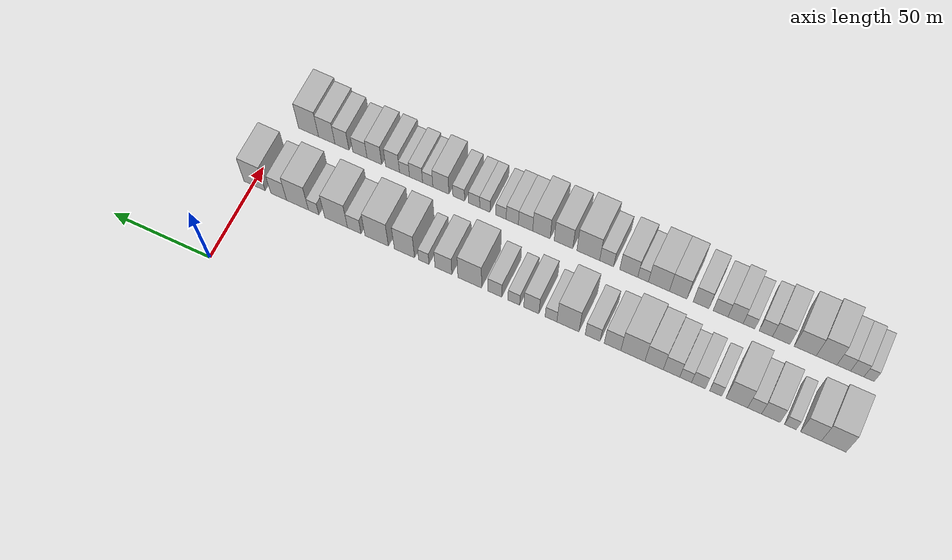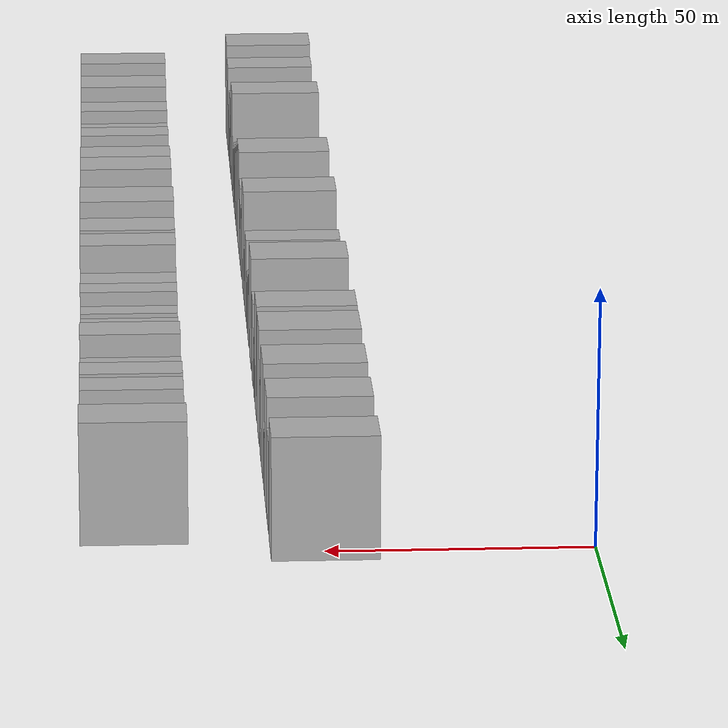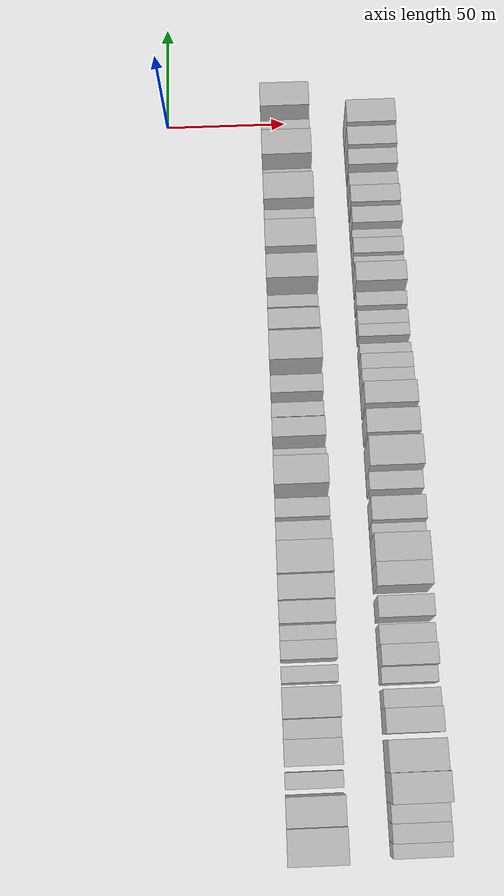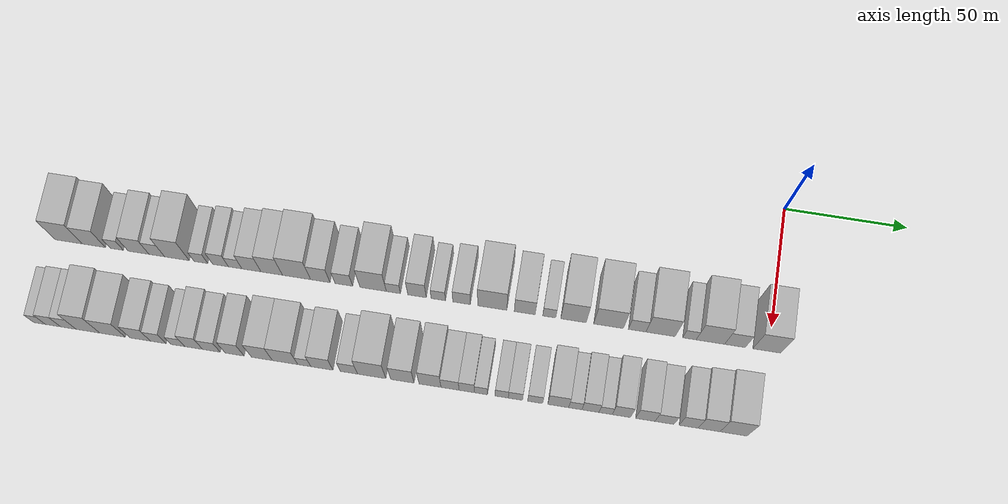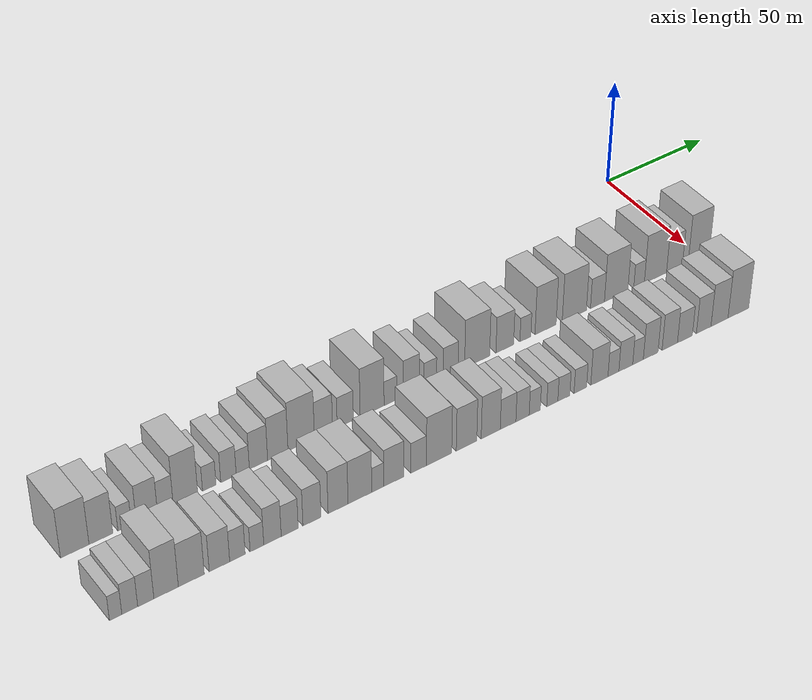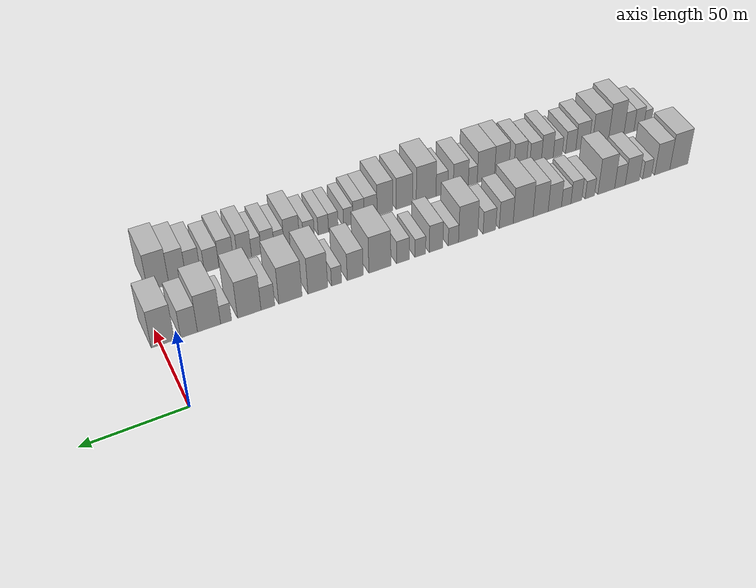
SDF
<sdf version="1.6">
 <world name="default">
  <model name="building_1">
   <static>1</static>
   <pose>50.0000 -284.3537 0 0.000000 0.000000 0.000000</pose>
   <link name="link">
    <pose>0 0 12.00 0 0 0</pose>
    <collision name="collision"><geometry><box><size>20.0000 11.2926 24.0000</size></box></geometry></collision>
    <visual name="visual">
     <cast_shadows>0</cast_shadows>
     <geometry><box><size>20.0000 11.2926 24.0000</size></box></geometry>
     <material>
      <script>
       <uri>model://HANNAS_wall/materials/scripts</uri>
       <uri>model://HANNAS_wall/materials/textures</uri>
       <name>vrc/HANNAS_wall</name>
      </script>
     </material>
    </visual>
   </link>
  </model>
  <model name="building_2">
   <static>1</static>
   <pose>50.0000 -273.9467 0 0.000000 0.000000 0.000000</pose>
   <link name="link">
    <pose>0 0 10.50 0 0 0</pose>
    <collision name="collision"><geometry><box><size>20.0000 9.5215 21.0000</size></box></geometry></collision>
    <visual name="visual">
     <cast_shadows>0</cast_shadows>
     <geometry><box><size>20.0000 9.5215 21.0000</size></box></geometry>
     <material>
      <script>
       <uri>model://HANNAS_wall/materials/scripts</uri>
       <uri>model://HANNAS_wall/materials/textures</uri>
       <name>vrc/HANNAS_wall</name>
      </script>
     </material>
    </visual>
   </link>
  </model>
  <model name="building_3">
   <static>1</static>
   <pose>50.0000 -264.4770 0 0.000000 0.000000 0.000000</pose>
   <link name="link">
    <pose>0 0 6.00 0 0 0</pose>
    <collision name="collision"><geometry><box><size>20.0000 5.4179 12.0000</size></box></geometry></collision>
    <visual name="visual">
     <cast_shadows>0</cast_shadows>
     <geometry><box><size>20.0000 5.4179 12.0000</size></box></geometry>
     <material>
      <script>
       <uri>model://HANNAS_wall/materials/scripts</uri>
       <uri>model://HANNAS_wall/materials/textures</uri>
       <name>vrc/HANNAS_wall</name>
      </script>
     </material>
    </visual>
   </link>
  </model>
  <model name="building_4">
   <static>1</static>
   <pose>50.0000 -255.4573 0 0.000000 0.000000 0.000000</pose>
   <link name="link">
    <pose>0 0 9.00 0 0 0</pose>
    <collision name="collision"><geometry><box><size>20.0000 8.6215 18.0000</size></box></geometry></collision>
    <visual name="visual">
     <cast_shadows>0</cast_shadows>
     <geometry><box><size>20.0000 8.6215 18.0000</size></box></geometry>
     <material>
      <script>
       <uri>model://HANNAS_wall/materials/scripts</uri>
       <uri>model://HANNAS_wall/materials/textures</uri>
       <name>vrc/HANNAS_wall</name>
      </script>
     </material>
    </visual>
   </link>
  </model>
  <model name="building_5">
   <static>1</static>
   <pose>50.0000 -247.9118 0 0.000000 0.000000 0.000000</pose>
   <link name="link">
    <pose>0 0 7.50 0 0 0</pose>
    <collision name="collision"><geometry><box><size>20.0000 6.4694 15.0000</size></box></geometry></collision>
    <visual name="visual">
     <cast_shadows>0</cast_shadows>
     <geometry><box><size>20.0000 6.4694 15.0000</size></box></geometry>
     <material>
      <script>
       <uri>model://HANNAS_wall/materials/scripts</uri>
       <uri>model://HANNAS_wall/materials/textures</uri>
       <name>vrc/HANNAS_wall</name>
      </script>
     </material>
    </visual>
   </link>
  </model>
  <model name="building_6">
   <static>1</static>
   <pose>50.0000 -239.6142 0 0.000000 0.000000 0.000000</pose>
   <link name="link">
    <pose>0 0 12.00 0 0 0</pose>
    <collision name="collision"><geometry><box><size>20.0000 10.1259 24.0000</size></box></geometry></collision>
    <visual name="visual">
     <cast_shadows>0</cast_shadows>
     <geometry><box><size>20.0000 10.1259 24.0000</size></box></geometry>
     <material>
      <script>
       <uri>model://HANNAS_wall/materials/scripts</uri>
       <uri>model://HANNAS_wall/materials/textures</uri>
       <name>vrc/HANNAS_wall</name>
      </script>
     </material>
    </visual>
   </link>
  </model>
  <model name="building_7">
   <static>1</static>
   <pose>50.0000 -229.7362 0 0.000000 0.000000 0.000000</pose>
   <link name="link">
    <pose>0 0 6.00 0 0 0</pose>
    <collision name="collision"><geometry><box><size>20.0000 5.6300 12.0000</size></box></geometry></collision>
    <visual name="visual">
     <cast_shadows>0</cast_shadows>
     <geometry><box><size>20.0000 5.6300 12.0000</size></box></geometry>
     <material>
      <script>
       <uri>model://HANNAS_wall/materials/scripts</uri>
       <uri>model://HANNAS_wall/materials/textures</uri>
       <name>vrc/HANNAS_wall</name>
      </script>
     </material>
    </visual>
   </link>
  </model>
  <model name="building_8">
   <static>1</static>
   <pose>50.0000 -221.6639 0 0.000000 0.000000 0.000000</pose>
   <link name="link">
    <pose>0 0 7.50 0 0 0</pose>
    <collision name="collision"><geometry><box><size>20.0000 6.5146 15.0000</size></box></geometry></collision>
    <visual name="visual">
     <cast_shadows>0</cast_shadows>
     <geometry><box><size>20.0000 6.5146 15.0000</size></box></geometry>
     <material>
      <script>
       <uri>model://HANNAS_wall/materials/scripts</uri>
       <uri>model://HANNAS_wall/materials/textures</uri>
       <name>vrc/HANNAS_wall</name>
      </script>
     </material>
    </visual>
   </link>
  </model>
  <model name="building_9">
   <static>1</static>
   <pose>50.0000 -215.6207 0 0.000000 0.000000 0.000000</pose>
   <link name="link">
    <pose>0 0 6.00 0 0 0</pose>
    <collision name="collision"><geometry><box><size>20.0000 5.5718 12.0000</size></box></geometry></collision>
    <visual name="visual">
     <cast_shadows>0</cast_shadows>
     <geometry><box><size>20.0000 5.5718 12.0000</size></box></geometry>
     <material>
      <script>
       <uri>model://HANNAS_wall/materials/scripts</uri>
       <uri>model://HANNAS_wall/materials/textures</uri>
       <name>vrc/HANNAS_wall</name>
      </script>
     </material>
    </visual>
   </link>
  </model>
  <model name="building_10">
   <static>1</static>
   <pose>50.0000 -208.9223 0 0.000000 0.000000 0.000000</pose>
   <link name="link">
    <pose>0 0 9.00 0 0 0</pose>
    <collision name="collision"><geometry><box><size>20.0000 7.8251 18.0000</size></box></geometry></collision>
    <visual name="visual">
     <cast_shadows>0</cast_shadows>
     <geometry><box><size>20.0000 7.8251 18.0000</size></box></geometry>
     <material>
      <script>
       <uri>model://HANNAS_wall/materials/scripts</uri>
       <uri>model://HANNAS_wall/materials/textures</uri>
       <name>vrc/HANNAS_wall</name>
      </script>
     </material>
    </visual>
   </link>
  </model>
  <model name="building_11">
   <static>1</static>
   <pose>50.0000 -200.6276 0 0.000000 0.000000 0.000000</pose>
   <link name="link">
    <pose>0 0 10.50 0 0 0</pose>
    <collision name="collision"><geometry><box><size>20.0000 8.7643 21.0000</size></box></geometry></collision>
    <visual name="visual">
     <cast_shadows>0</cast_shadows>
     <geometry><box><size>20.0000 8.7643 21.0000</size></box></geometry>
     <material>
      <script>
       <uri>model://HANNAS_wall/materials/scripts</uri>
       <uri>model://HANNAS_wall/materials/textures</uri>
       <name>vrc/HANNAS_wall</name>
      </script>
     </material>
    </visual>
   </link>
  </model>
  <model name="building_12">
   <static>1</static>
   <pose>50.0000 -190.4889 0 0.000000 0.000000 0.000000</pose>
   <link name="link">
    <pose>0 0 12.00 0 0 0</pose>
    <collision name="collision"><geometry><box><size>20.0000 11.5131 24.0000</size></box></geometry></collision>
    <visual name="visual">
     <cast_shadows>0</cast_shadows>
     <geometry><box><size>20.0000 11.5131 24.0000</size></box></geometry>
     <material>
      <script>
       <uri>model://HANNAS_wall/materials/scripts</uri>
       <uri>model://HANNAS_wall/materials/textures</uri>
       <name>vrc/HANNAS_wall</name>
      </script>
     </material>
    </visual>
   </link>
  </model>
  <model name="building_13">
   <static>1</static>
   <pose>50.0000 -180.7489 0 0.000000 0.000000 0.000000</pose>
   <link name="link">
    <pose>0 0 9.00 0 0 0</pose>
    <collision name="collision"><geometry><box><size>20.0000 7.9670 18.0000</size></box></geometry></collision>
    <visual name="visual">
     <cast_shadows>0</cast_shadows>
     <geometry><box><size>20.0000 7.9670 18.0000</size></box></geometry>
     <material>
      <script>
       <uri>model://HANNAS_wall/materials/scripts</uri>
       <uri>model://HANNAS_wall/materials/textures</uri>
       <name>vrc/HANNAS_wall</name>
      </script>
     </material>
    </visual>
   </link>
  </model>
  <model name="building_14">
   <static>1</static>
   <pose>50.0000 -171.1622 0 0.000000 0.000000 0.000000</pose>
   <link name="link">
    <pose>0 0 7.50 0 0 0</pose>
    <collision name="collision"><geometry><box><size>20.0000 7.2064 15.0000</size></box></geometry></collision>
    <visual name="visual">
     <cast_shadows>0</cast_shadows>
     <geometry><box><size>20.0000 7.2064 15.0000</size></box></geometry>
     <material>
      <script>
       <uri>model://HANNAS_wall/materials/scripts</uri>
       <uri>model://HANNAS_wall/materials/textures</uri>
       <name>vrc/HANNAS_wall</name>
      </script>
     </material>
    </visual>
   </link>
  </model>
  <model name="building_15">
   <static>1</static>
   <pose>50.0000 -159.1854 0 0.000000 0.000000 0.000000</pose>
   <link name="link">
    <pose>0 0 12.00 0 0 0</pose>
    <collision name="collision"><geometry><box><size>20.0000 10.7472 24.0000</size></box></geometry></collision>
    <visual name="visual">
     <cast_shadows>0</cast_shadows>
     <geometry><box><size>20.0000 10.7472 24.0000</size></box></geometry>
     <material>
      <script>
       <uri>model://HANNAS_wall/materials/scripts</uri>
       <uri>model://HANNAS_wall/materials/textures</uri>
       <name>vrc/HANNAS_wall</name>
      </script>
     </material>
    </visual>
   </link>
  </model>
  <model name="building_16">
   <static>1</static>
   <pose>50.0000 -150.9458 0 0.000000 0.000000 0.000000</pose>
   <link name="link">
    <pose>0 0 6.00 0 0 0</pose>
    <collision name="collision"><geometry><box><size>20.0000 5.7321 12.0000</size></box></geometry></collision>
    <visual name="visual">
     <cast_shadows>0</cast_shadows>
     <geometry><box><size>20.0000 5.7321 12.0000</size></box></geometry>
     <material>
      <script>
       <uri>model://HANNAS_wall/materials/scripts</uri>
       <uri>model://HANNAS_wall/materials/textures</uri>
       <name>vrc/HANNAS_wall</name>
      </script>
     </material>
    </visual>
   </link>
  </model>
  <model name="building_17">
   <static>1</static>
   <pose>50.0000 -141.3510 0 0.000000 0.000000 0.000000</pose>
   <link name="link">
    <pose>0 0 9.00 0 0 0</pose>
    <collision name="collision"><geometry><box><size>20.0000 7.4574 18.0000</size></box></geometry></collision>
    <visual name="visual">
     <cast_shadows>0</cast_shadows>
     <geometry><box><size>20.0000 7.4574 18.0000</size></box></geometry>
     <material>
      <script>
       <uri>model://HANNAS_wall/materials/scripts</uri>
       <uri>model://HANNAS_wall/materials/textures</uri>
       <name>vrc/HANNAS_wall</name>
      </script>
     </material>
    </visual>
   </link>
  </model>
  <model name="building_18">
   <static>1</static>
   <pose>50.0000 -132.7311 0 0.000000 0.000000 0.000000</pose>
   <link name="link">
    <pose>0 0 6.00 0 0 0</pose>
    <collision name="collision"><geometry><box><size>20.0000 5.7824 12.0000</size></box></geometry></collision>
    <visual name="visual">
     <cast_shadows>0</cast_shadows>
     <geometry><box><size>20.0000 5.7824 12.0000</size></box></geometry>
     <material>
      <script>
       <uri>model://HANNAS_wall/materials/scripts</uri>
       <uri>model://HANNAS_wall/materials/textures</uri>
       <name>vrc/HANNAS_wall</name>
      </script>
     </material>
    </visual>
   </link>
  </model>
  <model name="building_19">
   <static>1</static>
   <pose>50.0000 -123.3128 0 0.000000 0.000000 0.000000</pose>
   <link name="link">
    <pose>0 0 7.50 0 0 0</pose>
    <collision name="collision"><geometry><box><size>20.0000 7.0542 15.0000</size></box></geometry></collision>
    <visual name="visual">
     <cast_shadows>0</cast_shadows>
     <geometry><box><size>20.0000 7.0542 15.0000</size></box></geometry>
     <material>
      <script>
       <uri>model://HANNAS_wall/materials/scripts</uri>
       <uri>model://HANNAS_wall/materials/textures</uri>
       <name>vrc/HANNAS_wall</name>
      </script>
     </material>
    </visual>
   </link>
  </model>
  <model name="building_20">
   <static>1</static>
   <pose>50.0000 -110.9050 0 0.000000 0.000000 0.000000</pose>
   <link name="link">
    <pose>0 0 12.00 0 0 0</pose>
    <collision name="collision"><geometry><box><size>20.0000 11.7614 24.0000</size></box></geometry></collision>
    <visual name="visual">
     <cast_shadows>0</cast_shadows>
     <geometry><box><size>20.0000 11.7614 24.0000</size></box></geometry>
     <material>
      <script>
       <uri>model://HANNAS_wall/materials/scripts</uri>
       <uri>model://HANNAS_wall/materials/textures</uri>
       <name>vrc/HANNAS_wall</name>
      </script>
     </material>
    </visual>
   </link>
  </model>
  <model name="building_21">
   <static>1</static>
   <pose>50.0000 -97.8067 0 0.000000 0.000000 0.000000</pose>
   <link name="link">
    <pose>0 0 9.00 0 0 0</pose>
    <collision name="collision"><geometry><box><size>20.0000 8.4354 18.0000</size></box></geometry></collision>
    <visual name="visual">
     <cast_shadows>0</cast_shadows>
     <geometry><box><size>20.0000 8.4354 18.0000</size></box></geometry>
     <material>
      <script>
       <uri>model://HANNAS_wall/materials/scripts</uri>
       <uri>model://HANNAS_wall/materials/textures</uri>
       <name>vrc/HANNAS_wall</name>
      </script>
     </material>
    </visual>
   </link>
  </model>
  <model name="building_22">
   <static>1</static>
   <pose>50.0000 -87.9572 0 0.000000 0.000000 0.000000</pose>
   <link name="link">
    <pose>0 0 6.00 0 0 0</pose>
    <collision name="collision"><geometry><box><size>20.0000 5.2635 12.0000</size></box></geometry></collision>
    <visual name="visual">
     <cast_shadows>0</cast_shadows>
     <geometry><box><size>20.0000 5.2635 12.0000</size></box></geometry>
     <material>
      <script>
       <uri>model://HANNAS_wall/materials/scripts</uri>
       <uri>model://HANNAS_wall/materials/textures</uri>
       <name>vrc/HANNAS_wall</name>
      </script>
     </material>
    </visual>
   </link>
  </model>
  <model name="building_23">
   <static>1</static>
   <pose>50.0000 -78.1997 0 0.000000 0.000000 0.000000</pose>
   <link name="link">
    <pose>0 0 12.00 0 0 0</pose>
    <collision name="collision"><geometry><box><size>20.0000 10.2516 24.0000</size></box></geometry></collision>
    <visual name="visual">
     <cast_shadows>0</cast_shadows>
     <geometry><box><size>20.0000 10.2516 24.0000</size></box></geometry>
     <material>
      <script>
       <uri>model://HANNAS_wall/materials/scripts</uri>
       <uri>model://HANNAS_wall/materials/textures</uri>
       <name>vrc/HANNAS_wall</name>
      </script>
     </material>
    </visual>
   </link>
  </model>
  <model name="building_24">
   <static>1</static>
   <pose>50.0000 -64.1104 0 0.000000 0.000000 0.000000</pose>
   <link name="link">
    <pose>0 0 12.00 0 0 0</pose>
    <collision name="collision"><geometry><box><size>20.0000 11.9269 24.0000</size></box></geometry></collision>
    <visual name="visual">
     <cast_shadows>0</cast_shadows>
     <geometry><box><size>20.0000 11.9269 24.0000</size></box></geometry>
     <material>
      <script>
       <uri>model://HANNAS_wall/materials/scripts</uri>
       <uri>model://HANNAS_wall/materials/textures</uri>
       <name>vrc/HANNAS_wall</name>
      </script>
     </material>
    </visual>
   </link>
  </model>
  <model name="building_25">
   <static>1</static>
   <pose>50.0000 -52.6682 0 0.000000 0.000000 0.000000</pose>
   <link name="link">
    <pose>0 0 7.50 0 0 0</pose>
    <collision name="collision"><geometry><box><size>20.0000 6.9575 15.0000</size></box></geometry></collision>
    <visual name="visual">
     <cast_shadows>0</cast_shadows>
     <geometry><box><size>20.0000 6.9575 15.0000</size></box></geometry>
     <material>
      <script>
       <uri>model://HANNAS_wall/materials/scripts</uri>
       <uri>model://HANNAS_wall/materials/textures</uri>
       <name>vrc/HANNAS_wall</name>
      </script>
     </material>
    </visual>
   </link>
  </model>
  <model name="building_26">
   <static>1</static>
   <pose>50.0000 -43.3174 0 0.000000 0.000000 0.000000</pose>
   <link name="link">
    <pose>0 0 12.00 0 0 0</pose>
    <collision name="collision"><geometry><box><size>20.0000 11.7442 24.0000</size></box></geometry></collision>
    <visual name="visual">
     <cast_shadows>0</cast_shadows>
     <geometry><box><size>20.0000 11.7442 24.0000</size></box></geometry>
     <material>
      <script>
       <uri>model://HANNAS_wall/materials/scripts</uri>
       <uri>model://HANNAS_wall/materials/textures</uri>
       <name>vrc/HANNAS_wall</name>
      </script>
     </material>
    </visual>
   </link>
  </model>
  <model name="building_27">
   <static>1</static>
   <pose>50.0000 -31.7545 0 0.000000 0.000000 0.000000</pose>
   <link name="link">
    <pose>0 0 6.00 0 0 0</pose>
    <collision name="collision"><geometry><box><size>20.0000 5.3816 12.0000</size></box></geometry></collision>
    <visual name="visual">
     <cast_shadows>0</cast_shadows>
     <geometry><box><size>20.0000 5.3816 12.0000</size></box></geometry>
     <material>
      <script>
       <uri>model://HANNAS_wall/materials/scripts</uri>
       <uri>model://HANNAS_wall/materials/textures</uri>
       <name>vrc/HANNAS_wall</name>
      </script>
     </material>
    </visual>
   </link>
  </model>
  <model name="building_28">
   <static>1</static>
   <pose>50.0000 -23.3864 0 0.000000 0.000000 0.000000</pose>
   <link name="link">
    <pose>0 0 12.00 0 0 0</pose>
    <collision name="collision"><geometry><box><size>20.0000 11.3546 24.0000</size></box></geometry></collision>
    <visual name="visual">
     <cast_shadows>0</cast_shadows>
     <geometry><box><size>20.0000 11.3546 24.0000</size></box></geometry>
     <material>
      <script>
       <uri>model://HANNAS_wall/materials/scripts</uri>
       <uri>model://HANNAS_wall/materials/textures</uri>
       <name>vrc/HANNAS_wall</name>
      </script>
     </material>
    </visual>
   </link>
  </model>
  <model name="building_29">
   <static>1</static>
   <pose>50.0000 -13.5969 0 0.000000 0.000000 0.000000</pose>
   <link name="link">
    <pose>0 0 9.00 0 0 0</pose>
    <collision name="collision"><geometry><box><size>20.0000 8.2244 18.0000</size></box></geometry></collision>
    <visual name="visual">
     <cast_shadows>0</cast_shadows>
     <geometry><box><size>20.0000 8.2244 18.0000</size></box></geometry>
     <material>
      <script>
       <uri>model://HANNAS_wall/materials/scripts</uri>
       <uri>model://HANNAS_wall/materials/textures</uri>
       <name>vrc/HANNAS_wall</name>
      </script>
     </material>
    </visual>
   </link>
  </model>
  <model name="building_30">
   <static>1</static>
   <pose>50.0000 -0.9442 0 0.000000 0.000000 0.000000</pose>
   <link name="link">
    <pose>0 0 12.00 0 0 0</pose>
    <collision name="collision"><geometry><box><size>20.0000 11.0809 24.0000</size></box></geometry></collision>
    <visual name="visual">
     <cast_shadows>0</cast_shadows>
     <geometry><box><size>20.0000 11.0809 24.0000</size></box></geometry>
     <material>
      <script>
       <uri>model://HANNAS_wall/materials/scripts</uri>
       <uri>model://HANNAS_wall/materials/textures</uri>
       <name>vrc/HANNAS_wall</name>
      </script>
     </material>
    </visual>
   </link>
  </model>
  <model name="building_62">
   <static>1</static>
   <pose>85.0000 -287.5904 0 0.000000 0.000000 0.000000</pose>
   <link name="link">
    <pose>0 0 6.00 0 0 0</pose>
    <collision name="collision"><geometry><box><size>20.0000 4.8192 12.0000</size></box></geometry></collision>
    <visual name="visual">
     <cast_shadows>0</cast_shadows>
     <geometry><box><size>20.0000 4.8192 12.0000</size></box></geometry>
     <material>
      <script>
       <uri>model://HANNAS_wall/materials/scripts</uri>
       <uri>model://HANNAS_wall/materials/textures</uri>
       <name>vrc/HANNAS_wall</name>
      </script>
     </material>
    </visual>
   </link>
  </model>
  <model name="building_63">
   <static>1</static>
   <pose>85.0000 -282.0988 0 0.000000 0.000000 0.000000</pose>
   <link name="link">
    <pose>0 0 7.50 0 0 0</pose>
    <collision name="collision"><geometry><box><size>20.0000 6.1639 15.0000</size></box></geometry></collision>
    <visual name="visual">
     <cast_shadows>0</cast_shadows>
     <geometry><box><size>20.0000 6.1639 15.0000</size></box></geometry>
     <material>
      <script>
       <uri>model://HANNAS_wall/materials/scripts</uri>
       <uri>model://HANNAS_wall/materials/textures</uri>
       <name>vrc/HANNAS_wall</name>
      </script>
     </material>
    </visual>
   </link>
  </model>
  <model name="building_64">
   <static>1</static>
   <pose>85.0000 -275.8447 0 0.000000 0.000000 0.000000</pose>
   <link name="link">
    <pose>0 0 7.50 0 0 0</pose>
    <collision name="collision"><geometry><box><size>20.0000 6.3443 15.0000</size></box></geometry></collision>
    <visual name="visual">
     <cast_shadows>0</cast_shadows>
     <geometry><box><size>20.0000 6.3443 15.0000</size></box></geometry>
     <material>
      <script>
       <uri>model://HANNAS_wall/materials/scripts</uri>
       <uri>model://HANNAS_wall/materials/textures</uri>
       <name>vrc/HANNAS_wall</name>
      </script>
     </material>
    </visual>
   </link>
  </model>
  <model name="building_65">
   <static>1</static>
   <pose>85.0000 -267.8398 0 0.000000 0.000000 0.000000</pose>
   <link name="link">
    <pose>0 0 12.00 0 0 0</pose>
    <collision name="collision"><geometry><box><size>20.0000 9.6653 24.0000</size></box></geometry></collision>
    <visual name="visual">
     <cast_shadows>0</cast_shadows>
     <geometry><box><size>20.0000 9.6653 24.0000</size></box></geometry>
     <material>
      <script>
       <uri>model://HANNAS_wall/materials/scripts</uri>
       <uri>model://HANNAS_wall/materials/textures</uri>
       <name>vrc/HANNAS_wall</name>
      </script>
     </material>
    </visual>
   </link>
  </model>
  <model name="building_66">
   <static>1</static>
   <pose>85.0000 -257.8293 0 0.000000 0.000000 0.000000</pose>
   <link name="link">
    <pose>0 0 10.50 0 0 0</pose>
    <collision name="collision"><geometry><box><size>20.0000 10.3557 21.0000</size></box></geometry></collision>
    <visual name="visual">
     <cast_shadows>0</cast_shadows>
     <geometry><box><size>20.0000 10.3557 21.0000</size></box></geometry>
     <material>
      <script>
       <uri>model://HANNAS_wall/materials/scripts</uri>
       <uri>model://HANNAS_wall/materials/textures</uri>
       <name>vrc/HANNAS_wall</name>
      </script>
     </material>
    </visual>
   </link>
  </model>
  <model name="building_67">
   <static>1</static>
   <pose>85.0000 -246.5240 0 0.000000 0.000000 0.000000</pose>
   <link name="link">
    <pose>0 0 9.00 0 0 0</pose>
    <collision name="collision"><geometry><box><size>20.0000 8.2549 18.0000</size></box></geometry></collision>
    <visual name="visual">
     <cast_shadows>0</cast_shadows>
     <geometry><box><size>20.0000 8.2549 18.0000</size></box></geometry>
     <material>
      <script>
       <uri>model://HANNAS_wall/materials/scripts</uri>
       <uri>model://HANNAS_wall/materials/textures</uri>
       <name>vrc/HANNAS_wall</name>
      </script>
     </material>
    </visual>
   </link>
  </model>
  <model name="building_68">
   <static>1</static>
   <pose>85.0000 -239.2355 0 0.000000 0.000000 0.000000</pose>
   <link name="link">
    <pose>0 0 7.50 0 0 0</pose>
    <collision name="collision"><geometry><box><size>20.0000 6.3221 15.0000</size></box></geometry></collision>
    <visual name="visual">
     <cast_shadows>0</cast_shadows>
     <geometry><box><size>20.0000 6.3221 15.0000</size></box></geometry>
     <material>
      <script>
       <uri>model://HANNAS_wall/materials/scripts</uri>
       <uri>model://HANNAS_wall/materials/textures</uri>
       <name>vrc/HANNAS_wall</name>
      </script>
     </material>
    </visual>
   </link>
  </model>
  <model name="building_69">
   <static>1</static>
   <pose>85.0000 -231.2621 0 0.000000 0.000000 0.000000</pose>
   <link name="link">
    <pose>0 0 6.00 0 0 0</pose>
    <collision name="collision"><geometry><box><size>20.0000 5.6248 12.0000</size></box></geometry></collision>
    <visual name="visual">
     <cast_shadows>0</cast_shadows>
     <geometry><box><size>20.0000 5.6248 12.0000</size></box></geometry>
     <material>
      <script>
       <uri>model://HANNAS_wall/materials/scripts</uri>
       <uri>model://HANNAS_wall/materials/textures</uri>
       <name>vrc/HANNAS_wall</name>
      </script>
     </material>
    </visual>
   </link>
  </model>
  <model name="building_70">
   <static>1</static>
   <pose>85.0000 -224.8343 0 0.000000 0.000000 0.000000</pose>
   <link name="link">
    <pose>0 0 9.00 0 0 0</pose>
    <collision name="collision"><geometry><box><size>20.0000 7.2308 18.0000</size></box></geometry></collision>
    <visual name="visual">
     <cast_shadows>0</cast_shadows>
     <geometry><box><size>20.0000 7.2308 18.0000</size></box></geometry>
     <material>
      <script>
       <uri>model://HANNAS_wall/materials/scripts</uri>
       <uri>model://HANNAS_wall/materials/textures</uri>
       <name>vrc/HANNAS_wall</name>
      </script>
     </material>
    </visual>
   </link>
  </model>
  <model name="building_71">
   <static>1</static>
   <pose>85.0000 -217.6850 0 0.000000 0.000000 0.000000</pose>
   <link name="link">
    <pose>0 0 7.50 0 0 0</pose>
    <collision name="collision"><geometry><box><size>20.0000 7.0678 15.0000</size></box></geometry></collision>
    <visual name="visual">
     <cast_shadows>0</cast_shadows>
     <geometry><box><size>20.0000 7.0678 15.0000</size></box></geometry>
     <material>
      <script>
       <uri>model://HANNAS_wall/materials/scripts</uri>
       <uri>model://HANNAS_wall/materials/textures</uri>
       <name>vrc/HANNAS_wall</name>
      </script>
     </material>
    </visual>
   </link>
  </model>
  <model name="building_72">
   <static>1</static>
   <pose>85.0000 -208.3514 0 0.000000 0.000000 0.000000</pose>
   <link name="link">
    <pose>0 0 9.00 0 0 0</pose>
    <collision name="collision"><geometry><box><size>20.0000 7.5994 18.0000</size></box></geometry></collision>
    <visual name="visual">
     <cast_shadows>0</cast_shadows>
     <geometry><box><size>20.0000 7.5994 18.0000</size></box></geometry>
     <material>
      <script>
       <uri>model://HANNAS_wall/materials/scripts</uri>
       <uri>model://HANNAS_wall/materials/textures</uri>
       <name>vrc/HANNAS_wall</name>
      </script>
     </material>
    </visual>
   </link>
  </model>
  <model name="building_73">
   <static>1</static>
   <pose>85.0000 -197.3093 0 0.000000 0.000000 0.000000</pose>
   <link name="link">
    <pose>0 0 10.50 0 0 0</pose>
    <collision name="collision"><geometry><box><size>20.0000 8.4848 21.0000</size></box></geometry></collision>
    <visual name="visual">
     <cast_shadows>0</cast_shadows>
     <geometry><box><size>20.0000 8.4848 21.0000</size></box></geometry>
     <material>
      <script>
       <uri>model://HANNAS_wall/materials/scripts</uri>
       <uri>model://HANNAS_wall/materials/textures</uri>
       <name>vrc/HANNAS_wall</name>
      </script>
     </material>
    </visual>
   </link>
  </model>
  <model name="building_74">
   <static>1</static>
   <pose>85.0000 -187.9602 0 0.000000 0.000000 0.000000</pose>
   <link name="link">
    <pose>0 0 10.50 0 0 0</pose>
    <collision name="collision"><geometry><box><size>20.0000 10.2133 21.0000</size></box></geometry></collision>
    <visual name="visual">
     <cast_shadows>0</cast_shadows>
     <geometry><box><size>20.0000 10.2133 21.0000</size></box></geometry>
     <material>
      <script>
       <uri>model://HANNAS_wall/materials/scripts</uri>
       <uri>model://HANNAS_wall/materials/textures</uri>
       <name>vrc/HANNAS_wall</name>
      </script>
     </material>
    </visual>
   </link>
  </model>
  <model name="building_75">
   <static>1</static>
   <pose>85.0000 -180.2427 0 0.000000 0.000000 0.000000</pose>
   <link name="link">
    <pose>0 0 6.00 0 0 0</pose>
    <collision name="collision"><geometry><box><size>20.0000 5.2216 12.0000</size></box></geometry></collision>
    <visual name="visual">
     <cast_shadows>0</cast_shadows>
     <geometry><box><size>20.0000 5.2216 12.0000</size></box></geometry>
     <material>
      <script>
       <uri>model://HANNAS_wall/materials/scripts</uri>
       <uri>model://HANNAS_wall/materials/textures</uri>
       <name>vrc/HANNAS_wall</name>
      </script>
     </material>
    </visual>
   </link>
  </model>
  <model name="building_76">
   <static>1</static>
   <pose>85.0000 -173.2269 0 0.000000 0.000000 0.000000</pose>
   <link name="link">
    <pose>0 0 9.00 0 0 0</pose>
    <collision name="collision"><geometry><box><size>20.0000 8.8101 18.0000</size></box></geometry></collision>
    <visual name="visual">
     <cast_shadows>0</cast_shadows>
     <geometry><box><size>20.0000 8.8101 18.0000</size></box></geometry>
     <material>
      <script>
       <uri>model://HANNAS_wall/materials/scripts</uri>
       <uri>model://HANNAS_wall/materials/textures</uri>
       <name>vrc/HANNAS_wall</name>
      </script>
     </material>
    </visual>
   </link>
  </model>
  <model name="building_77">
   <static>1</static>
   <pose>85.0000 -162.3798 0 0.000000 0.000000 0.000000</pose>
   <link name="link">
    <pose>0 0 7.50 0 0 0</pose>
    <collision name="collision"><geometry><box><size>20.0000 6.8840 15.0000</size></box></geometry></collision>
    <visual name="visual">
     <cast_shadows>0</cast_shadows>
     <geometry><box><size>20.0000 6.8840 15.0000</size></box></geometry>
     <material>
      <script>
       <uri>model://HANNAS_wall/materials/scripts</uri>
       <uri>model://HANNAS_wall/materials/textures</uri>
       <name>vrc/HANNAS_wall</name>
      </script>
     </material>
    </visual>
   </link>
  </model>
  <model name="building_78">
   <static>1</static>
   <pose>85.0000 -153.3004 0 0.000000 0.000000 0.000000</pose>
   <link name="link">
    <pose>0 0 12.00 0 0 0</pose>
    <collision name="collision"><geometry><box><size>20.0000 11.2749 24.0000</size></box></geometry></collision>
    <visual name="visual">
     <cast_shadows>0</cast_shadows>
     <geometry><box><size>20.0000 11.2749 24.0000</size></box></geometry>
     <material>
      <script>
       <uri>model://HANNAS_wall/materials/scripts</uri>
       <uri>model://HANNAS_wall/materials/textures</uri>
       <name>vrc/HANNAS_wall</name>
      </script>
     </material>
    </visual>
   </link>
  </model>
  <model name="building_79">
   <static>1</static>
   <pose>85.0000 -141.0245 0 0.000000 0.000000 0.000000</pose>
   <link name="link">
    <pose>0 0 10.50 0 0 0</pose>
    <collision name="collision"><geometry><box><size>20.0000 9.2767 21.0000</size></box></geometry></collision>
    <visual name="visual">
     <cast_shadows>0</cast_shadows>
     <geometry><box><size>20.0000 9.2767 21.0000</size></box></geometry>
     <material>
      <script>
       <uri>model://HANNAS_wall/materials/scripts</uri>
       <uri>model://HANNAS_wall/materials/textures</uri>
       <name>vrc/HANNAS_wall</name>
      </script>
     </material>
    </visual>
   </link>
  </model>
  <model name="building_80">
   <static>1</static>
   <pose>85.0000 -130.0353 0 0.000000 0.000000 0.000000</pose>
   <link name="link">
    <pose>0 0 10.50 0 0 0</pose>
    <collision name="collision"><geometry><box><size>20.0000 8.7018 21.0000</size></box></geometry></collision>
    <visual name="visual">
     <cast_shadows>0</cast_shadows>
     <geometry><box><size>20.0000 8.7018 21.0000</size></box></geometry>
     <material>
      <script>
       <uri>model://HANNAS_wall/materials/scripts</uri>
       <uri>model://HANNAS_wall/materials/textures</uri>
       <name>vrc/HANNAS_wall</name>
      </script>
     </material>
    </visual>
   </link>
  </model>
  <model name="building_81">
   <static>1</static>
   <pose>85.0000 -122.0895 0 0.000000 0.000000 0.000000</pose>
   <link name="link">
    <pose>0 0 7.50 0 0 0</pose>
    <collision name="collision"><geometry><box><size>20.0000 7.1900 15.0000</size></box></geometry></collision>
    <visual name="visual">
     <cast_shadows>0</cast_shadows>
     <geometry><box><size>20.0000 7.1900 15.0000</size></box></geometry>
     <material>
      <script>
       <uri>model://HANNAS_wall/materials/scripts</uri>
       <uri>model://HANNAS_wall/materials/textures</uri>
       <name>vrc/HANNAS_wall</name>
      </script>
     </material>
    </visual>
   </link>
  </model>
  <model name="building_82">
   <static>1</static>
   <pose>85.0000 -115.4232 0 0.000000 0.000000 0.000000</pose>
   <link name="link">
    <pose>0 0 7.50 0 0 0</pose>
    <collision name="collision"><geometry><box><size>20.0000 6.1426 15.0000</size></box></geometry></collision>
    <visual name="visual">
     <cast_shadows>0</cast_shadows>
     <geometry><box><size>20.0000 6.1426 15.0000</size></box></geometry>
     <material>
      <script>
       <uri>model://HANNAS_wall/materials/scripts</uri>
       <uri>model://HANNAS_wall/materials/textures</uri>
       <name>vrc/HANNAS_wall</name>
      </script>
     </material>
    </visual>
   </link>
  </model>
  <model name="building_83">
   <static>1</static>
   <pose>85.0000 -109.7554 0 0.000000 0.000000 0.000000</pose>
   <link name="link">
    <pose>0 0 6.00 0 0 0</pose>
    <collision name="collision"><geometry><box><size>20.0000 5.1928 12.0000</size></box></geometry></collision>
    <visual name="visual">
     <cast_shadows>0</cast_shadows>
     <geometry><box><size>20.0000 5.1928 12.0000</size></box></geometry>
     <material>
      <script>
       <uri>model://HANNAS_wall/materials/scripts</uri>
       <uri>model://HANNAS_wall/materials/textures</uri>
       <name>vrc/HANNAS_wall</name>
      </script>
     </material>
    </visual>
   </link>
  </model>
  <model name="building_84">
   <static>1</static>
   <pose>85.0000 -101.5526 0 0.000000 0.000000 0.000000</pose>
   <link name="link">
    <pose>0 0 6.00 0 0 0</pose>
    <collision name="collision"><geometry><box><size>20.0000 5.2129 12.0000</size></box></geometry></collision>
    <visual name="visual">
     <cast_shadows>0</cast_shadows>
     <geometry><box><size>20.0000 5.2129 12.0000</size></box></geometry>
     <material>
      <script>
       <uri>model://HANNAS_wall/materials/scripts</uri>
       <uri>model://HANNAS_wall/materials/textures</uri>
       <name>vrc/HANNAS_wall</name>
      </script>
     </material>
    </visual>
   </link>
  </model>
  <model name="building_85">
   <static>1</static>
   <pose>85.0000 -96.1187 0 0.000000 0.000000 0.000000</pose>
   <link name="link">
    <pose>0 0 6.00 0 0 0</pose>
    <collision name="collision"><geometry><box><size>20.0000 5.6549 12.0000</size></box></geometry></collision>
    <visual name="visual">
     <cast_shadows>0</cast_shadows>
     <geometry><box><size>20.0000 5.6549 12.0000</size></box></geometry>
     <material>
      <script>
       <uri>model://HANNAS_wall/materials/scripts</uri>
       <uri>model://HANNAS_wall/materials/textures</uri>
       <name>vrc/HANNAS_wall</name>
      </script>
     </material>
    </visual>
   </link>
  </model>
  <model name="building_86">
   <static>1</static>
   <pose>85.0000 -88.3043 0 0.000000 0.000000 0.000000</pose>
   <link name="link">
    <pose>0 0 6.00 0 0 0</pose>
    <collision name="collision"><geometry><box><size>20.0000 5.9738 12.0000</size></box></geometry></collision>
    <visual name="visual">
     <cast_shadows>0</cast_shadows>
     <geometry><box><size>20.0000 5.9738 12.0000</size></box></geometry>
     <material>
      <script>
       <uri>model://HANNAS_wall/materials/scripts</uri>
       <uri>model://HANNAS_wall/materials/textures</uri>
       <name>vrc/HANNAS_wall</name>
      </script>
     </material>
    </visual>
   </link>
  </model>
  <model name="building_87">
   <static>1</static>
   <pose>85.0000 -79.1959 0 0.000000 0.000000 0.000000</pose>
   <link name="link">
    <pose>0 0 9.00 0 0 0</pose>
    <collision name="collision"><geometry><box><size>20.0000 8.2430 18.0000</size></box></geometry></collision>
    <visual name="visual">
     <cast_shadows>0</cast_shadows>
     <geometry><box><size>20.0000 8.2430 18.0000</size></box></geometry>
     <material>
      <script>
       <uri>model://HANNAS_wall/materials/scripts</uri>
       <uri>model://HANNAS_wall/materials/textures</uri>
       <name>vrc/HANNAS_wall</name>
      </script>
     </material>
    </visual>
   </link>
  </model>
  <model name="building_88">
   <static>1</static>
   <pose>85.0000 -72.4410 0 0.000000 0.000000 0.000000</pose>
   <link name="link">
    <pose>0 0 6.00 0 0 0</pose>
    <collision name="collision"><geometry><box><size>20.0000 5.2667 12.0000</size></box></geometry></collision>
    <visual name="visual">
     <cast_shadows>0</cast_shadows>
     <geometry><box><size>20.0000 5.2667 12.0000</size></box></geometry>
     <material>
      <script>
       <uri>model://HANNAS_wall/materials/scripts</uri>
       <uri>model://HANNAS_wall/materials/textures</uri>
       <name>vrc/HANNAS_wall</name>
      </script>
     </material>
    </visual>
   </link>
  </model>
  <model name="building_89">
   <static>1</static>
   <pose>85.0000 -66.4473 0 0.000000 0.000000 0.000000</pose>
   <link name="link">
    <pose>0 0 7.50 0 0 0</pose>
    <collision name="collision"><geometry><box><size>20.0000 6.7207 15.0000</size></box></geometry></collision>
    <visual name="visual">
     <cast_shadows>0</cast_shadows>
     <geometry><box><size>20.0000 6.7207 15.0000</size></box></geometry>
     <material>
      <script>
       <uri>model://HANNAS_wall/materials/scripts</uri>
       <uri>model://HANNAS_wall/materials/textures</uri>
       <name>vrc/HANNAS_wall</name>
      </script>
     </material>
    </visual>
   </link>
  </model>
  <model name="building_90">
   <static>1</static>
   <pose>85.0000 -60.4902 0 0.000000 0.000000 0.000000</pose>
   <link name="link">
    <pose>0 0 6.00 0 0 0</pose>
    <collision name="collision"><geometry><box><size>20.0000 5.1934 12.0000</size></box></geometry></collision>
    <visual name="visual">
     <cast_shadows>0</cast_shadows>
     <geometry><box><size>20.0000 5.1934 12.0000</size></box></geometry>
     <material>
      <script>
       <uri>model://HANNAS_wall/materials/scripts</uri>
       <uri>model://HANNAS_wall/materials/textures</uri>
       <name>vrc/HANNAS_wall</name>
      </script>
     </material>
    </visual>
   </link>
  </model>
  <model name="building_91">
   <static>1</static>
   <pose>85.0000 -54.2855 0 0.000000 0.000000 0.000000</pose>
   <link name="link">
    <pose>0 0 9.00 0 0 0</pose>
    <collision name="collision"><geometry><box><size>20.0000 7.2161 18.0000</size></box></geometry></collision>
    <visual name="visual">
     <cast_shadows>0</cast_shadows>
     <geometry><box><size>20.0000 7.2161 18.0000</size></box></geometry>
     <material>
      <script>
       <uri>model://HANNAS_wall/materials/scripts</uri>
       <uri>model://HANNAS_wall/materials/textures</uri>
       <name>vrc/HANNAS_wall</name>
      </script>
     </material>
    </visual>
   </link>
  </model>
  <model name="building_92">
   <static>1</static>
   <pose>85.0000 -44.8535 0 0.000000 0.000000 0.000000</pose>
   <link name="link">
    <pose>0 0 9.00 0 0 0</pose>
    <collision name="collision"><geometry><box><size>20.0000 7.6479 18.0000</size></box></geometry></collision>
    <visual name="visual">
     <cast_shadows>0</cast_shadows>
     <geometry><box><size>20.0000 7.6479 18.0000</size></box></geometry>
     <material>
      <script>
       <uri>model://HANNAS_wall/materials/scripts</uri>
       <uri>model://HANNAS_wall/materials/textures</uri>
       <name>vrc/HANNAS_wall</name>
      </script>
     </material>
    </visual>
   </link>
  </model>
  <model name="building_93">
   <static>1</static>
   <pose>85.0000 -37.2978 0 0.000000 0.000000 0.000000</pose>
   <link name="link">
    <pose>0 0 7.50 0 0 0</pose>
    <collision name="collision"><geometry><box><size>20.0000 7.4635 15.0000</size></box></geometry></collision>
    <visual name="visual">
     <cast_shadows>0</cast_shadows>
     <geometry><box><size>20.0000 7.4635 15.0000</size></box></geometry>
     <material>
      <script>
       <uri>model://HANNAS_wall/materials/scripts</uri>
       <uri>model://HANNAS_wall/materials/textures</uri>
       <name>vrc/HANNAS_wall</name>
      </script>
     </material>
    </visual>
   </link>
  </model>
  <model name="building_94">
   <static>1</static>
   <pose>85.0000 -27.8839 0 0.000000 0.000000 0.000000</pose>
   <link name="link">
    <pose>0 0 9.00 0 0 0</pose>
    <collision name="collision"><geometry><box><size>20.0000 7.3643 18.0000</size></box></geometry></collision>
    <visual name="visual">
     <cast_shadows>0</cast_shadows>
     <geometry><box><size>20.0000 7.3643 18.0000</size></box></geometry>
     <material>
      <script>
       <uri>model://HANNAS_wall/materials/scripts</uri>
       <uri>model://HANNAS_wall/materials/textures</uri>
       <name>vrc/HANNAS_wall</name>
      </script>
     </material>
    </visual>
   </link>
  </model>
  <model name="building_95">
   <static>1</static>
   <pose>85.0000 -19.8834 0 0.000000 0.000000 0.000000</pose>
   <link name="link">
    <pose>0 0 10.50 0 0 0</pose>
    <collision name="collision"><geometry><box><size>20.0000 8.6366 21.0000</size></box></geometry></collision>
    <visual name="visual">
     <cast_shadows>0</cast_shadows>
     <geometry><box><size>20.0000 8.6366 21.0000</size></box></geometry>
     <material>
      <script>
       <uri>model://HANNAS_wall/materials/scripts</uri>
       <uri>model://HANNAS_wall/materials/textures</uri>
       <name>vrc/HANNAS_wall</name>
      </script>
     </material>
    </visual>
   </link>
  </model>
  <model name="building_96">
   <static>1</static>
   <pose>85.0000 -10.2594 0 0.000000 0.000000 0.000000</pose>
   <link name="link">
    <pose>0 0 12.00 0 0 0</pose>
    <collision name="collision"><geometry><box><size>20.0000 10.6114 24.0000</size></box></geometry></collision>
    <visual name="visual">
     <cast_shadows>0</cast_shadows>
     <geometry><box><size>20.0000 10.6114 24.0000</size></box></geometry>
     <material>
      <script>
       <uri>model://HANNAS_wall/materials/scripts</uri>
       <uri>model://HANNAS_wall/materials/textures</uri>
       <name>vrc/HANNAS_wall</name>
      </script>
     </material>
    </visual>
   </link>
  </model>
 </world>
</sdf>
